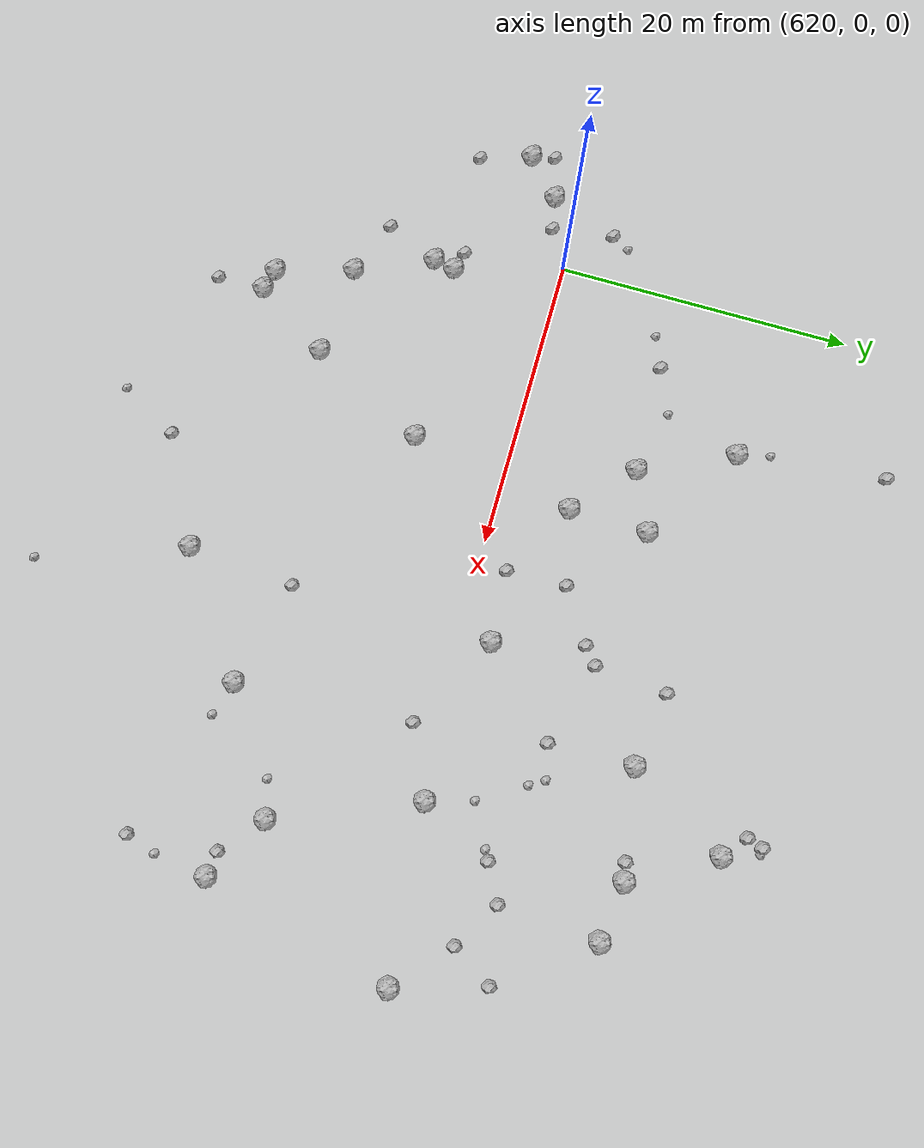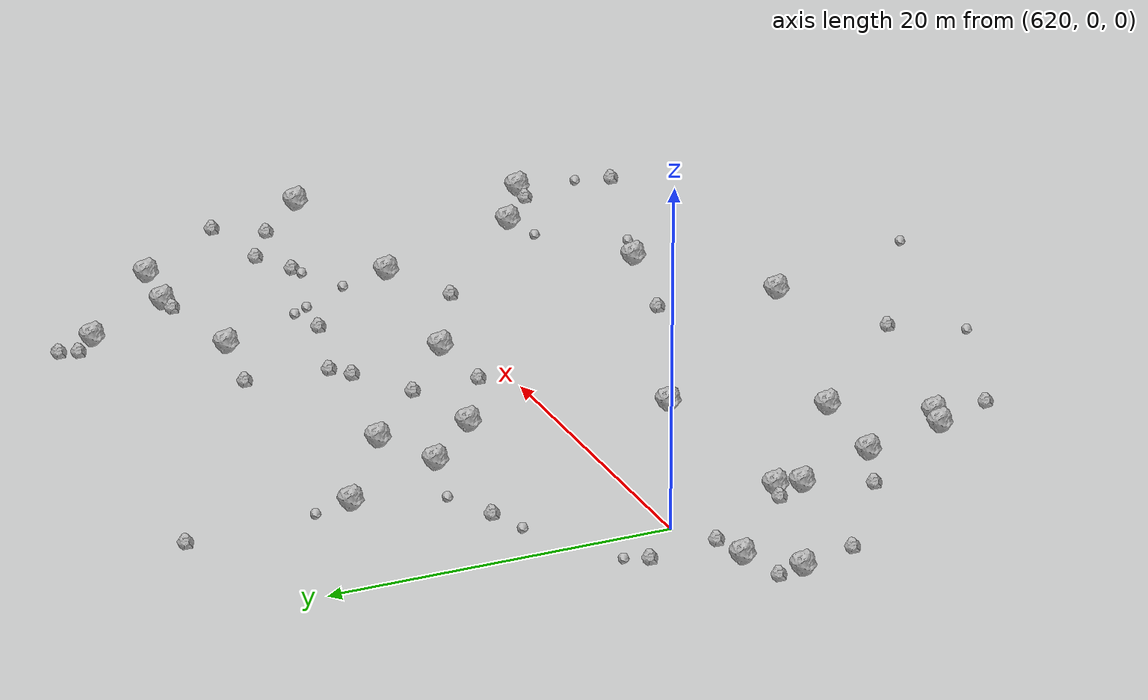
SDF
<sdf version="1.6">
 <world name="default">
  <include><uri>model://sun</uri></include>
  <model name="rock1_16_3">
   <include><uri>model://rock1</uri><pose>612.6553581001778 -4.298075221103964 0.5 0 0 0</pose></include>
  </model>
  <model name="rock1_16_4">
   <include><uri>model://rock1</uri><pose>657.324751115612 0.9089848803931453 0.5 0 0 0</pose></include>
  </model>
  <model name="rock1_16_5">
   <include><uri>model://rock1</uri><pose>627.1396813482764 -19.4838880615129 0.5 0 0 0</pose></include>
  </model>
  <model name="rock1_16_6">
   <include><uri>model://rock1</uri><pose>651.5545123872562 13.229471897477936 0.5 0 0 0</pose></include>
  </model>
  <model name="rock1_16_7">
   <include><uri>model://rock1</uri><pose>629.7538022592593 14.664171979838287 0.5 0 0 0</pose></include>
  </model>
  <model name="rock1_16_8">
   <include><uri>model://rock1</uri><pose>636.4167885219034 4.813336234246968 0.5 0 0 0</pose></include>
  </model>
  <model name="rock1_16_9">
   <include><uri>model://rock1</uri><pose>668.8321965781988 1.911192230280836 0.5 0 0 0</pose></include>
  </model>
  <model name="rock1_16_10">
   <include><uri>model://rock1</uri><pose>634.3718998093349 -6.486599138792812 0.5 0 0 0</pose></include>
  </model>
  <model name="rock1_16_11">
   <include><uri>model://rock1</uri><pose>661.1582794632925 -8.515747893089234 0.5 0 0 0</pose></include>
  </model>
  <model name="rock1_16_12">
   <include><uri>model://rock1</uri><pose>630.3493856926177 -14.42080527959581 0.5 0 0 0</pose></include>
  </model>
  <model name="rock1_16_13">
   <include><uri>model://rock1</uri><pose>658.6671773089071 14.366226351781414 0.5 0 0 0</pose></include>
  </model>
  <model name="rock1_16_14">
   <include><uri>model://rock1</uri><pose>653.4329342970776 -13.1061006261193 0.5 0 0 0</pose></include>
  </model>
  <model name="rock1_16_15">
   <include><uri>model://rock1</uri><pose>662.6133372123172 13.82067185301603 0.5 0 0 0</pose></include>
  </model>
  <model name="rock1_16_16">
   <include><uri>model://rock1</uri><pose>622.2166422937485 -7.271146326387985 0.5 0 0 0</pose></include>
  </model>
  <model name="rock1_16_17">
   <include><uri>model://rock1</uri><pose>625.6760879816773 -19.07358240449585 0.5 0 0 0</pose></include>
  </model>
  <model name="rock1_16_18">
   <include><uri>model://rock1</uri><pose>665.5336771101084 -11.038843118908353 0.5 0 0 0</pose></include>
  </model>
  <model name="rock1_16_19">
   <include><uri>model://rock1</uri><pose>646.376209795903 2.202408063318039 0.5 0 0 0</pose></include>
  </model>
  <model name="rock1_16_20">
   <include><uri>model://rock1</uri><pose>636.5292115119853 10.206040233222105 0.5 0 0 0</pose></include>
  </model>
  <model name="rock1_16_21">
   <include><uri>model://rock1</uri><pose>632.5948066484129 8.437618217742305 0.5 0 0 0</pose></include>
  </model>
  <model name="rock1_16_22">
   <include><uri>model://rock1</uri><pose>655.5132056501786 19.86662318291095 0.5 0 0 0</pose></include>
  </model>
  <model name="rock1_16_23">
   <include><uri>model://rock1</uri><pose>621.9258414108323 -8.756106808867692 0.5 0 0 0</pose></include>
  </model>
  <model name="rock1_16_24">
   <include><uri>model://rock1</uri><pose>645.6929117379037 -18.6598465143996 0.5 0 0 0</pose></include>
  </model>
  <model name="rock1_16_25">
   <include><uri>model://rock1</uri><pose>615.2120162710265 -1.9444981495477194 0.5 0 0 0</pose></include>
  </model>
  <model name="rock1_16_26">
   <include><uri>model://rock1</uri><pose>624.1598658149785 -13.88457426997439 0.5 0 0 0</pose></include>
  </model>
  <model name="rock2_16_0">
   <include><uri>model://rock2</uri><pose>613.656980059648 -7.763180747681055 0.3 0 0 0</pose></include>
  </model>
  <model name="rock2_16_1">
   <include><uri>model://rock2</uri><pose>627.1570499750734 -22.714054058641487 0.3 0 0 0</pose></include>
  </model>
  <model name="rock2_16_2">
   <include><uri>model://rock2</uri><pose>620.3057835120869 -12.358682782213148 0.3 0 0 0</pose></include>
  </model>
  <model name="rock2_16_3">
   <include><uri>model://rock2</uri><pose>641.4073797936545 6.009226180853304 0.3 0 0 0</pose></include>
  </model>
  <model name="rock2_16_4">
   <include><uri>model://rock2</uri><pose>625.1766123861255 8.276063293910177 0.3 0 0 0</pose></include>
  </model>
  <model name="rock2_16_5">
   <include><uri>model://rock2</uri><pose>652.7254479340509 -1.2046765082533781 0.3 0 0 0</pose></include>
  </model>
  <model name="rock2_16_6">
   <include><uri>model://rock2</uri><pose>645.9945751981835 9.185843293027851 0.3 0 0 0</pose></include>
  </model>
  <model name="rock2_16_7">
   <include><uri>model://rock2</uri><pose>646.3228423480028 -11.394048749355083 0.3 0 0 0</pose></include>
  </model>
  <model name="rock2_16_8">
   <include><uri>model://rock2</uri><pose>657.4595877211106 14.195413571359637 0.3 0 0 0</pose></include>
  </model>
  <model name="rock2_16_9">
   <include><uri>model://rock2</uri><pose>620.8072193159211 -6.868235962795964 0.3 0 0 0</pose></include>
  </model>
  <model name="rock2_16_10">
   <include><uri>model://rock2</uri><pose>612.2231922077517 -2.687594873527509 0.3 0 0 0</pose></include>
  </model>
  <model name="rock2_16_11">
   <include><uri>model://rock2</uri><pose>628.5756481785676 24.73343537785233 0.3 0 0 0</pose></include>
  </model>
  <model name="rock2_16_12">
   <include><uri>model://rock2</uri><pose>641.5144920484507 1.9444669742891705 0.3 0 0 0</pose></include>
  </model>
  <model name="rock2_16_13">
   <include><uri>model://rock2</uri><pose>646.4642338463602 14.11353149326461 0.3 0 0 0</pose></include>
  </model>
  <model name="rock2_16_14">
   <include><uri>model://rock2</uri><pose>616.7948706652511 2.7529278799409838 0.3 0 0 0</pose></include>
  </model>
  <model name="rock2_16_15">
   <include><uri>model://rock2</uri><pose>638.6266088010394 -22.318418629557705 0.3 0 0 0</pose></include>
  </model>
  <model name="rock2_16_16">
   <include><uri>model://rock2</uri><pose>653.9135983354633 21.273831385641657 0.3 0 0 0</pose></include>
  </model>
  <model name="rock2_16_17">
   <include><uri>model://rock2</uri><pose>665.3140159879599 5.189489581119695 0.3 0 0 0</pose></include>
  </model>
  <model name="rock2_16_18">
   <include><uri>model://rock2</uri><pose>651.6265835567021 7.505347731944447 0.3 0 0 0</pose></include>
  </model>
  <model name="rock2_16_19">
   <include><uri>model://rock2</uri><pose>617.3963672655536 -1.4714912909282987 0.3 0 0 0</pose></include>
  </model>
  <model name="rock2_16_20">
   <include><uri>model://rock2</uri><pose>664.4305027494383 -16.711067023664857 0.3 0 0 0</pose></include>
  </model>
  <model name="rock2_16_21">
   <include><uri>model://rock2</uri><pose>667.0462161017826 7.930751997306572 0.3 0 0 0</pose></include>
  </model>
  <model name="rock2_16_22">
   <include><uri>model://rock2</uri><pose>659.7844283007692 5.813362251609462 0.3 0 0 0</pose></include>
  </model>
  <model name="rock2_16_23">
   <include><uri>model://rock2</uri><pose>654.2693515594221 22.32888387566406 0.3 0 0 0</pose></include>
  </model>
  <model name="rock2_16_24">
   <include><uri>model://rock2</uri><pose>662.1867179631536 7.121658955059139 0.3 0 0 0</pose></include>
  </model>
  <model name="rock2_16_25">
   <include><uri>model://rock2</uri><pose>644.8749616652261 8.256820702586253 0.3 0 0 0</pose></include>
  </model>
  <model name="rock2_16_26">
   <include><uri>model://rock2</uri><pose>663.8804578602457 -10.840280573991318 0.3 0 0 0</pose></include>
  </model>
  <model name="rock3_16_0">
   <include><uri>model://rock3</uri><pose>658.7035555199823 -9.219764677008651 0.2 0 0 0</pose></include>
  </model>
  <model name="rock3_16_1">
   <include><uri>model://rock3</uri><pose>654.5237806129416 6.994693882009457 0.2 0 0 0</pose></include>
  </model>
  <model name="rock3_16_2">
   <include><uri>model://rock3</uri><pose>636.4234974680496 -26.314297514932285 0.2 0 0 0</pose></include>
  </model>
  <model name="rock3_16_3">
   <include><uri>model://rock3</uri><pose>656.3947480151586 3.96244378468122 0.2 0 0 0</pose></include>
  </model>
  <model name="rock3_16_4">
   <include><uri>model://rock3</uri><pose>617.4543672465973 3.9496342754168055 0.2 0 0 0</pose></include>
  </model>
  <model name="rock3_16_5">
   <include><uri>model://rock3</uri><pose>665.1038763120738 -14.700365655553782 0.2 0 0 0</pose></include>
  </model>
  <model name="rock3_16_6">
   <include><uri>model://rock3</uri><pose>653.9353977582166 7.978352135932759 0.2 0 0 0</pose></include>
  </model>
  <model name="rock3_16_7">
   <include><uri>model://rock3</uri><pose>623.0353964949128 7.372866174124908 0.2 0 0 0</pose></include>
  </model>
  <model name="rock3_16_8">
   <include><uri>model://rock3</uri><pose>629.1451567223789 16.912223962367285 0.2 0 0 0</pose></include>
  </model>
  <model name="rock3_16_9">
   <include><uri>model://rock3</uri><pose>628.198213715472 9.551006475811583 0.2 0 0 0</pose></include>
  </model>
  <model name="rock3_16_10">
   <include><uri>model://rock3</uri><pose>659.1352908006832 5.419107417771436 0.2 0 0 0</pose></include>
  </model>
  <model name="rock3_16_11">
   <include><uri>model://rock3</uri><pose>654.6657509221734 22.304146911919638 0.2 0 0 0</pose></include>
  </model>
  <model name="rock3_16_12">
   <include><uri>model://rock3</uri><pose>649.1811551603821 -28.46093145367522 0.2 0 0 0</pose></include>
  </model>
  <model name="rock3_16_13">
   <include><uri>model://rock3</uri><pose>655.7889452609431 -13.906524170407131 0.2 0 0 0</pose></include>
  </model>
 </world>
</sdf>
